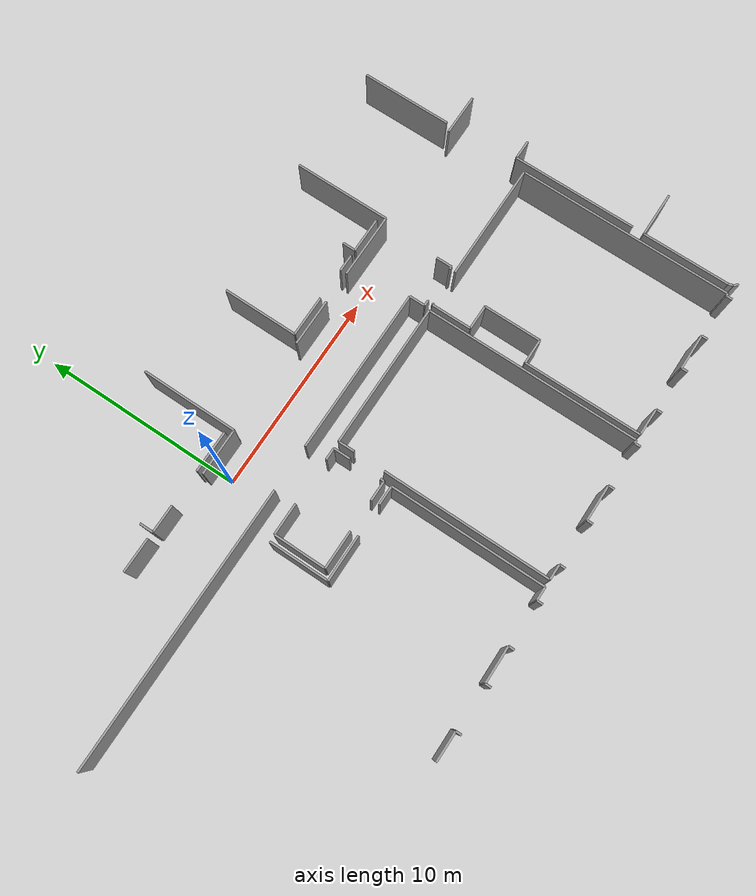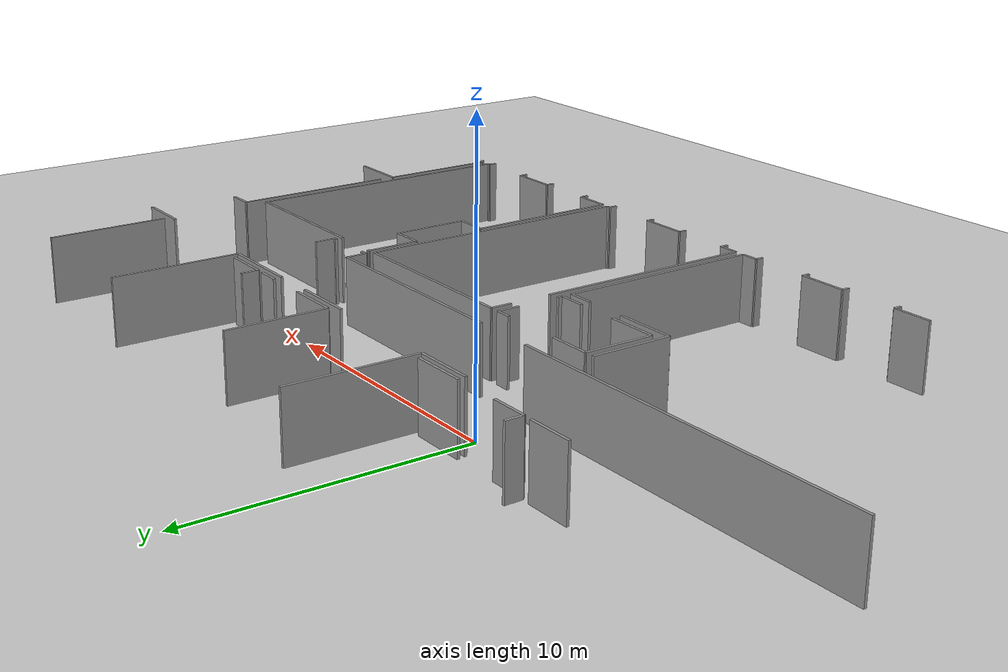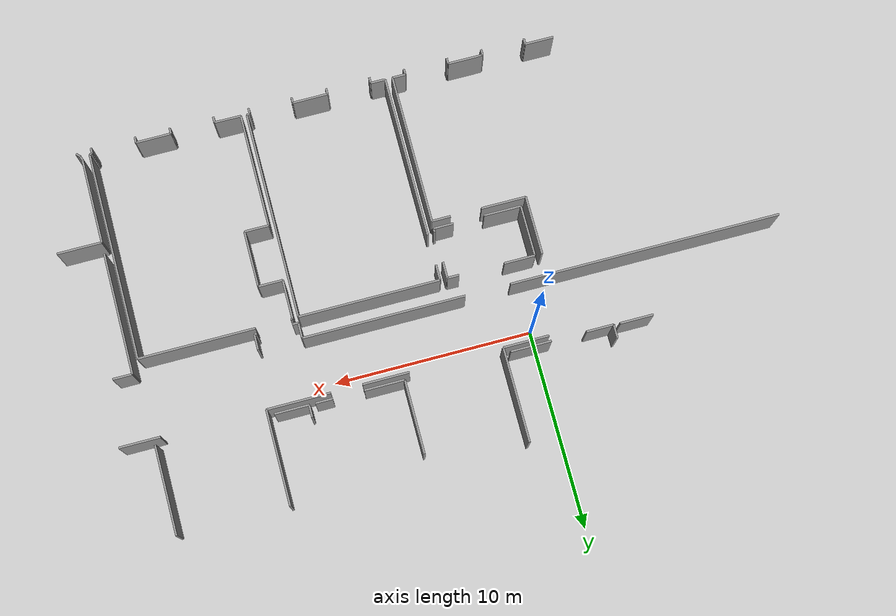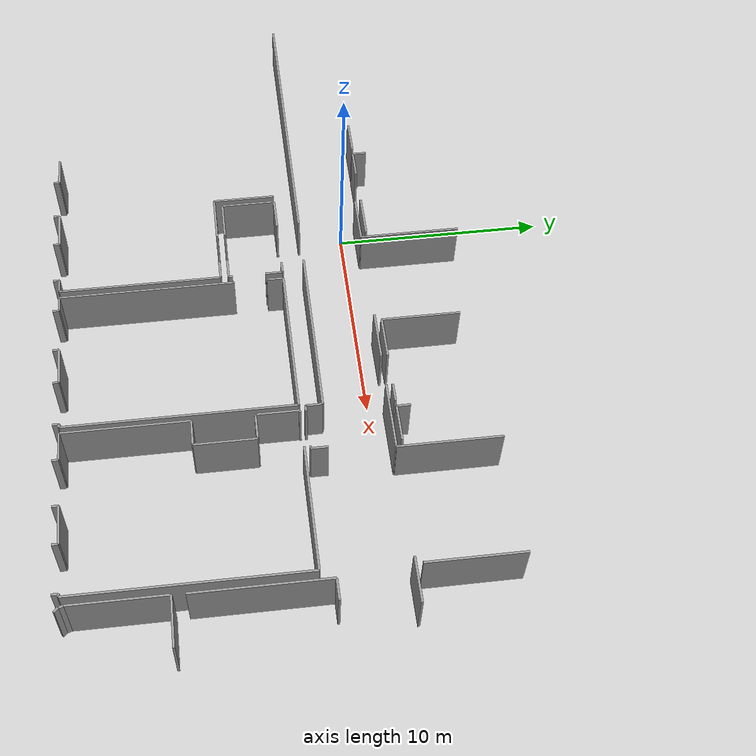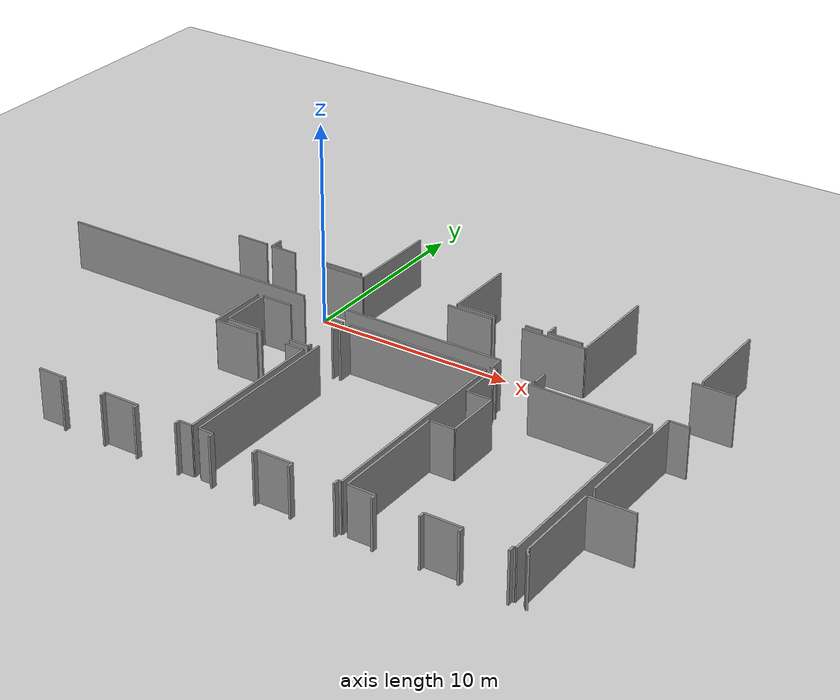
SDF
<sdf version="1.6">
 <world name="default">
  <model name="ground_plane">
   <static>1</static>
   <link name="link">
    <collision name="collision">
     <geometry><plane><normal>0 0 1</normal><size>100 100</size></plane></geometry>
     <surface><friction><ode><mu>100</mu><mu2>50</mu2></ode></friction></surface>
    </collision>
    <visual name="visual">
     <cast_shadows>0</cast_shadows>
     <geometry><plane><normal>0 0 1</normal><size>100 100</size></plane></geometry>
     <material>
      <script><uri>file://media/materials/scripts/gazebo.material</uri><name>Gazebo/Grey</name></script>
     </material>
    </visual>
   </link>
  </model>
  <model name="0510032270_A_40_1_104">
   <static>1</static>
   <link name="Wall_234">
    <collision name="Wall_234_Collision">
     <geometry><box><size>1.68494351754 0.1 2.5</size></box></geometry>
     <pose>0.842471758771 0 1.25 0 0 0</pose>
    </collision>
    <visual name="Wall_234_Visual">
     <pose>0.842471758771 0 1.25 0 0 0</pose>
     <geometry><box><size>1.68494351754 0.1 2.5</size></box></geometry>
     <material>
      <script><uri>file://media/materials/scripts/gazebo.material</uri><name>Gazebo/Grey</name></script>
      <ambient>1 1 1 1</ambient>
     </material>
    </visual>
    <pose>43.7073840172 -14.1587354029 0 0 0 3.14159265359</pose>
   </link>
   <link name="Wall_235">
    <collision name="Wall_235_Collision">
     <geometry><box><size>0.647928129408 0.1 2.5</size></box></geometry>
     <pose>0.323964064704 0 1.25 0 0 0</pose>
    </collision>
    <visual name="Wall_235_Visual">
     <pose>0.323964064704 0 1.25 0 0 0</pose>
     <geometry><box><size>0.647928129408 0.1 2.5</size></box></geometry>
     <material>
      <script><uri>file://media/materials/scripts/gazebo.material</uri><name>Gazebo/Grey</name></script>
      <ambient>1 1 1 1</ambient>
     </material>
    </visual>
    <pose>44.0287431541 -14.1545421045 0 0 0 1.57079632679</pose>
   </link>
   <link name="Wall_241">
    <collision name="Wall_241_Collision">
     <geometry><box><size>2.04696494148 0.1 2.5</size></box></geometry>
     <pose>1.02348247074 0 1.25 0 0 0</pose>
    </collision>
    <visual name="Wall_241_Visual">
     <pose>1.02348247074 0 1.25 0 0 0</pose>
     <geometry><box><size>2.04696494148 0.1 2.5</size></box></geometry>
     <material>
      <script><uri>file://media/materials/scripts/gazebo.material</uri><name>Gazebo/Grey</name></script>
      <ambient>1 1 1 1</ambient>
     </material>
    </visual>
    <pose>49.205814707 -14.1772875713 0 0 0 3.14159265359</pose>
   </link>
   <link name="Wall_242">
    <collision name="Wall_242_Collision">
     <geometry><box><size>1.37298753447 0.1 2.5</size></box></geometry>
     <pose>0.686493767234 0 1.25 0 0 0</pose>
    </collision>
    <visual name="Wall_242_Visual">
     <pose>0.686493767234 0 1.25 0 0 0</pose>
     <geometry><box><size>1.37298753447 0.1 2.5</size></box></geometry>
     <material>
      <script><uri>file://media/materials/scripts/gazebo.material</uri><name>Gazebo/Grey</name></script>
      <ambient>1 1 1 1</ambient>
     </material>
    </visual>
    <pose>45.3995705046 -14.1772875713 0 0 0 3.14159265359</pose>
   </link>
   <link name="Wall_243">
    <collision name="Wall_243_Collision">
     <geometry><box><size>0.0228478150905 0.1 2.5</size></box></geometry>
     <pose>0.0114239075453 0 1.25 0 0 0</pose>
    </collision>
    <visual name="Wall_243_Visual">
     <pose>0.0114239075453 0 1.25 0 0 0</pose>
     <geometry><box><size>0.0228478150905 0.1 2.5</size></box></geometry>
     <material>
      <script><uri>file://media/materials/scripts/gazebo.material</uri><name>Gazebo/Grey</name></script>
      <ambient>1 1 1 1</ambient>
     </material>
    </visual>
    <pose>44.0265829701 -14.1772875713 0 0 0 1.476108264</pose>
   </link>
   <link name="Wall_263">
    <collision name="Wall_263_Collision">
     <geometry><box><size>2.95780017027 0.1 2.5</size></box></geometry>
     <pose>1.47890008514 0 1.25 0 0 0</pose>
    </collision>
    <visual name="Wall_263_Visual">
     <pose>1.47890008514 0 1.25 0 0 0</pose>
     <geometry><box><size>2.95780017027 0.1 2.5</size></box></geometry>
     <material>
      <script><uri>file://media/materials/scripts/gazebo.material</uri><name>Gazebo/Grey</name></script>
      <ambient>1 1 1 1</ambient>
     </material>
    </visual>
    <pose>46.4297241318 -18.4702085213 0 0 0 -1.57079632679</pose>
   </link>
   <link name="Wall_264">
    <collision name="Wall_264_Collision">
     <geometry><box><size>2.2638728287 0.1 2.5</size></box></geometry>
     <pose>1.13193641435 0 1.25 0 0 0</pose>
    </collision>
    <visual name="Wall_264_Visual">
     <pose>1.13193641435 0 1.25 0 0 0</pose>
     <geometry><box><size>2.2638728287 0.1 2.5</size></box></geometry>
     <material>
      <script><uri>file://media/materials/scripts/gazebo.material</uri><name>Gazebo/Grey</name></script>
      <ambient>1 1 1 1</ambient>
     </material>
    </visual>
    <pose>46.4297241318 -21.4280086916 0 0 0 0.0</pose>
   </link>
   <link name="Wall_265">
    <collision name="Wall_265_Collision">
     <geometry><box><size>0.953530630138 0.1 2.5</size></box></geometry>
     <pose>0.476765315069 0 1.25 0 0 0</pose>
    </collision>
    <visual name="Wall_265_Visual">
     <pose>0.476765315069 0 1.25 0 0 0</pose>
     <geometry><box><size>0.953530630138 0.1 2.5</size></box></geometry>
     <material>
      <script><uri>file://media/materials/scripts/gazebo.material</uri><name>Gazebo/Grey</name></script>
      <ambient>1 1 1 1</ambient>
     </material>
    </visual>
    <pose>50.2667191888 -21.4280086916 0 0 0 0.0</pose>
   </link>
   <link name="Wall_266">
    <collision name="Wall_266_Collision">
     <geometry><box><size>7.6284991804 0.1 2.5</size></box></geometry>
     <pose>3.8142495902 0 1.25 0 0 0</pose>
    </collision>
    <visual name="Wall_266_Visual">
     <pose>3.8142495902 0 1.25 0 0 0</pose>
     <geometry><box><size>7.6284991804 0.1 2.5</size></box></geometry>
     <material>
      <script><uri>file://media/materials/scripts/gazebo.material</uri><name>Gazebo/Grey</name></script>
      <ambient>1 1 1 1</ambient>
     </material>
    </visual>
    <pose>51.2202498189 -21.4280086916 0 0 0 -1.57079632679</pose>
   </link>
   <link name="Wall_267">
    <collision name="Wall_267_Collision">
     <geometry><box><size>0.664065974561 0.1 2.5</size></box></geometry>
     <pose>0.33203298728 0 1.25 0 0 0</pose>
    </collision>
    <visual name="Wall_267_Visual">
     <pose>0.33203298728 0 1.25 0 0 0</pose>
     <geometry><box><size>0.664065974561 0.1 2.5</size></box></geometry>
     <material>
      <script><uri>file://media/materials/scripts/gazebo.material</uri><name>Gazebo/Grey</name></script>
      <ambient>1 1 1 1</ambient>
     </material>
    </visual>
    <pose>51.2202498189 -29.056507872 0 0 0 3.14159265359</pose>
   </link>
   <link name="Wall_268">
    <collision name="Wall_268_Collision">
     <geometry><box><size>0.2906082824 0.1 2.5</size></box></geometry>
     <pose>0.1453041412 0 1.25 0 0 0</pose>
    </collision>
    <visual name="Wall_268_Visual">
     <pose>0.1453041412 0 1.25 0 0 0</pose>
     <geometry><box><size>0.2906082824 0.1 2.5</size></box></geometry>
     <material>
      <script><uri>file://media/materials/scripts/gazebo.material</uri><name>Gazebo/Grey</name></script>
      <ambient>1 1 1 1</ambient>
     </material>
    </visual>
    <pose>50.5561838444 -29.056507872 0 0 0 -1.57079632679</pose>
   </link>
   <link name="Wall_269">
    <collision name="Wall_269_Collision">
     <geometry><box><size>0.288193959109 0.1 2.5</size></box></geometry>
     <pose>0.144096979554 0 1.25 0 0 0</pose>
    </collision>
    <visual name="Wall_269_Visual">
     <pose>0.144096979554 0 1.25 0 0 0</pose>
     <geometry><box><size>0.288193959109 0.1 2.5</size></box></geometry>
     <material>
      <script><uri>file://media/materials/scripts/gazebo.material</uri><name>Gazebo/Grey</name></script>
      <ambient>1 1 1 1</ambient>
     </material>
    </visual>
    <pose>48.3364041831 -29.3471161544 0 0 0 1.57079632679</pose>
   </link>
   <link name="Wall_270">
    <collision name="Wall_270_Collision">
     <geometry><box><size>1.78291421528 0.1 2.5</size></box></geometry>
     <pose>0.891457107641 0 1.25 0 0 0</pose>
    </collision>
    <visual name="Wall_270_Visual">
     <pose>0.891457107641 0 1.25 0 0 0</pose>
     <geometry><box><size>1.78291421528 0.1 2.5</size></box></geometry>
     <material>
      <script><uri>file://media/materials/scripts/gazebo.material</uri><name>Gazebo/Grey</name></script>
      <ambient>1 1 1 1</ambient>
     </material>
    </visual>
    <pose>48.3364041831 -29.0589221953 0 0 0 3.14159265359</pose>
   </link>
   <link name="Wall_271">
    <collision name="Wall_271_Collision">
     <geometry><box><size>0.294547441453 0.1 2.5</size></box></geometry>
     <pose>0.147273720726 0 1.25 0 0 0</pose>
    </collision>
    <visual name="Wall_271_Visual">
     <pose>0.147273720726 0 1.25 0 0 0</pose>
     <geometry><box><size>0.294547441453 0.1 2.5</size></box></geometry>
     <material>
      <script><uri>file://media/materials/scripts/gazebo.material</uri><name>Gazebo/Grey</name></script>
      <ambient>1 1 1 1</ambient>
     </material>
    </visual>
    <pose>46.5534899679 -29.0589221953 0 0 0 -1.57079632679</pose>
   </link>
   <link name="Wall_272">
    <collision name="Wall_272_Collision">
     <geometry><box><size>0.285398426878 0.1 2.5</size></box></geometry>
     <pose>0.142699213439 0 1.25 0 0 0</pose>
    </collision>
    <visual name="Wall_272_Visual">
     <pose>0.142699213439 0 1.25 0 0 0</pose>
     <geometry><box><size>0.285398426878 0.1 2.5</size></box></geometry>
     <material>
      <script><uri>file://media/materials/scripts/gazebo.material</uri><name>Gazebo/Grey</name></script>
      <ambient>1 1 1 1</ambient>
     </material>
    </visual>
    <pose>44.3319313316 -29.3534696367 0 0 0 1.57079632679</pose>
   </link>
   <link name="Wall_273">
    <collision name="Wall_273_Collision">
     <geometry><box><size>1.44555323879 0.1 2.5</size></box></geometry>
     <pose>0.722776619393 0 1.25 0 0 0</pose>
    </collision>
    <visual name="Wall_273_Visual">
     <pose>0.722776619393 0 1.25 0 0 0</pose>
     <geometry><box><size>1.44555323879 0.1 2.5</size></box></geometry>
     <material>
      <script><uri>file://media/materials/scripts/gazebo.material</uri><name>Gazebo/Grey</name></script>
      <ambient>1 1 1 1</ambient>
     </material>
    </visual>
    <pose>44.3319313316 -29.0680712098 0 0 0 3.13807649368</pose>
   </link>
   <link name="Wall_274">
    <collision name="Wall_274_Collision">
     <geometry><box><size>2.56922119013 0.1 2.5</size></box></geometry>
     <pose>1.28461059507 0 1.25 0 0 0</pose>
    </collision>
    <visual name="Wall_274_Visual">
     <pose>1.28461059507 0 1.25 0 0 0</pose>
     <geometry><box><size>2.56922119013 0.1 2.5</size></box></geometry>
     <material>
      <script><uri>file://media/materials/scripts/gazebo.material</uri><name>Gazebo/Grey</name></script>
      <ambient>1 1 1 1</ambient>
     </material>
    </visual>
    <pose>46.7879334663 -21.0394297114 0 0 0 1.57079632679</pose>
   </link>
   <link name="Wall_275">
    <collision name="Wall_275_Collision">
     <geometry><box><size>1.5546971295 0.1 2.5</size></box></geometry>
     <pose>0.777348564748 0 1.25 0 0 0</pose>
    </collision>
    <visual name="Wall_275_Visual">
     <pose>0.777348564748 0 1.25 0 0 0</pose>
     <geometry><box><size>1.5546971295 0.1 2.5</size></box></geometry>
     <material>
      <script><uri>file://media/materials/scripts/gazebo.material</uri><name>Gazebo/Grey</name></script>
      <ambient>1 1 1 1</ambient>
     </material>
    </visual>
    <pose>46.7879334663 -18.4702085213 0 0 0 0.0</pose>
   </link>
   <link name="Wall_276">
    <collision name="Wall_276_Collision">
     <geometry><box><size>0.593288181252 0.1 2.5</size></box></geometry>
     <pose>0.296644090626 0 1.25 0 0 0</pose>
    </collision>
    <visual name="Wall_276_Visual">
     <pose>0.296644090626 0 1.25 0 0 0</pose>
     <geometry><box><size>0.593288181252 0.1 2.5</size></box></geometry>
     <material>
      <script><uri>file://media/materials/scripts/gazebo.material</uri><name>Gazebo/Grey</name></script>
      <ambient>1 1 1 1</ambient>
     </material>
    </visual>
    <pose>50.6307737271 -18.4702085213 0 0 0 0.0</pose>
   </link>
   <link name="Wall_277">
    <collision name="Wall_277_Collision">
     <geometry><box><size>0.826969261852 0.1 2.5</size></box></geometry>
     <pose>0.413484630926 0 1.25 0 0 0</pose>
    </collision>
    <visual name="Wall_277_Visual">
     <pose>0.413484630926 0 1.25 0 0 0</pose>
     <geometry><box><size>0.826969261852 0.1 2.5</size></box></geometry>
     <material>
      <script><uri>file://media/materials/scripts/gazebo.material</uri><name>Gazebo/Grey</name></script>
      <ambient>1 1 1 1</ambient>
     </material>
    </visual>
    <pose>51.2240619083 -18.4702085213 0 0 0 -1.57079632679</pose>
   </link>
   <link name="Wall_278">
    <collision name="Wall_278_Collision">
     <geometry><box><size>0.189587913135 0.1 2.5</size></box></geometry>
     <pose>0.0947939565676 0 1.25 0 0 0</pose>
    </collision>
    <visual name="Wall_278_Visual">
     <pose>0.0947939565676 0 1.25 0 0 0</pose>
     <geometry><box><size>0.189587913135 0.1 2.5</size></box></geometry>
     <material>
      <script><uri>file://media/materials/scripts/gazebo.material</uri><name>Gazebo/Grey</name></script>
      <ambient>1 1 1 1</ambient>
     </material>
    </visual>
    <pose>51.2240619083 -20.8546704449 0 0 0 -1.57079632679</pose>
   </link>
   <link name="Wall_279">
    <collision name="Wall_279_Collision">
     <geometry><box><size>1.00397727995 0.1 2.5</size></box></geometry>
     <pose>0.501988639974 0 1.25 0 0 0</pose>
    </collision>
    <visual name="Wall_279_Visual">
     <pose>0.501988639974 0 1.25 0 0 0</pose>
     <geometry><box><size>1.00397727995 0.1 2.5</size></box></geometry>
     <material>
      <script><uri>file://media/materials/scripts/gazebo.material</uri><name>Gazebo/Grey</name></script>
      <ambient>1 1 1 1</ambient>
     </material>
    </visual>
    <pose>51.2240619083 -21.044258358 0 0 0 3.14159265359</pose>
   </link>
   <link name="Wall_280">
    <collision name="Wall_280_Collision">
     <geometry><box><size>1.87809558811 0.1 2.5</size></box></geometry>
     <pose>0.939047794053 0 1.25 0 0 0</pose>
    </collision>
    <visual name="Wall_280_Visual">
     <pose>0.939047794053 0 1.25 0 0 0</pose>
     <geometry><box><size>1.87809558811 0.1 2.5</size></box></geometry>
     <material>
      <script><uri>file://media/materials/scripts/gazebo.material</uri><name>Gazebo/Grey</name></script>
      <ambient>1 1 1 1</ambient>
     </material>
    </visual>
    <pose>48.6660228471 -21.044258358 0 0 0 3.13902161731</pose>
   </link>
   <link name="Wall_281">
    <collision name="Wall_281_Collision">
     <geometry><box><size>8.25978118607 0.1 2.5</size></box></geometry>
     <pose>4.12989059303 0 1.25 0 0 0</pose>
    </collision>
    <visual name="Wall_281_Visual">
     <pose>4.12989059303 0 1.25 0 0 0</pose>
     <geometry><box><size>8.25978118607 0.1 2.5</size></box></geometry>
     <material>
      <script><uri>file://media/materials/scripts/gazebo.material</uri><name>Gazebo/Grey</name></script>
      <ambient>1 1 1 1</ambient>
     </material>
    </visual>
    <pose>51.5888788645 -29.062988424 0 0 0 1.57079632679</pose>
   </link>
   <link name="Wall_282">
    <collision name="Wall_282_Collision">
     <geometry><box><size>0.785671626619 0.1 2.5</size></box></geometry>
     <pose>0.392835813309 0 1.25 0 0 0</pose>
    </collision>
    <visual name="Wall_282_Visual">
     <pose>0.392835813309 0 1.25 0 0 0</pose>
     <geometry><box><size>0.785671626619 0.1 2.5</size></box></geometry>
     <material>
      <script><uri>file://media/materials/scripts/gazebo.material</uri><name>Gazebo/Grey</name></script>
      <ambient>1 1 1 1</ambient>
     </material>
    </visual>
    <pose>51.5888788645 -19.2549906604 0 0 0 1.57079632679</pose>
   </link>
   <link name="Wall_283">
    <collision name="Wall_283_Collision">
     <geometry><box><size>7.11958524467 0.1 2.5</size></box></geometry>
     <pose>3.55979262234 0 1.25 0 0 0</pose>
    </collision>
    <visual name="Wall_283_Visual">
     <pose>3.55979262234 0 1.25 0 0 0</pose>
     <geometry><box><size>7.11958524467 0.1 2.5</size></box></geometry>
     <material>
      <script><uri>file://media/materials/scripts/gazebo.material</uri><name>Gazebo/Grey</name></script>
      <ambient>1 1 1 1</ambient>
     </material>
    </visual>
    <pose>51.5888788645 -18.4693190338 0 0 0 0.0</pose>
   </link>
   <link name="Wall_284">
    <collision name="Wall_284_Collision">
     <geometry><box><size>10.5771503361 0.1 2.5</size></box></geometry>
     <pose>5.28857516805 0 1.25 0 0 0</pose>
    </collision>
    <visual name="Wall_284_Visual">
     <pose>5.28857516805 0 1.25 0 0 0</pose>
     <geometry><box><size>10.5771503361 0.1 2.5</size></box></geometry>
     <material>
      <script><uri>file://media/materials/scripts/gazebo.material</uri><name>Gazebo/Grey</name></script>
      <ambient>1 1 1 1</ambient>
     </material>
    </visual>
    <pose>58.7084641092 -18.4693190338 0 0 0 -1.57079632679</pose>
   </link>
   <link name="Wall_285">
    <collision name="Wall_285_Collision">
     <geometry><box><size>0.157566362123 0.1 2.5</size></box></geometry>
     <pose>0.0787831810615 0 1.25 0 0 0</pose>
    </collision>
    <visual name="Wall_285_Visual">
     <pose>0.0787831810615 0 1.25 0 0 0</pose>
     <geometry><box><size>0.157566362123 0.1 2.5</size></box></geometry>
     <material>
      <script><uri>file://media/materials/scripts/gazebo.material</uri><name>Gazebo/Grey</name></script>
      <ambient>1 1 1 1</ambient>
     </material>
    </visual>
    <pose>58.7084641092 -29.0464693699 0 0 0 3.14159265359</pose>
   </link>
   <link name="Wall_286">
    <collision name="Wall_286_Collision">
     <geometry><box><size>0.30318817744 0.1 2.5</size></box></geometry>
     <pose>0.15159408872 0 1.25 0 0 0</pose>
    </collision>
    <visual name="Wall_286_Visual">
     <pose>0.15159408872 0 1.25 0 0 0</pose>
     <geometry><box><size>0.30318817744 0.1 2.5</size></box></geometry>
     <material>
      <script><uri>file://media/materials/scripts/gazebo.material</uri><name>Gazebo/Grey</name></script>
      <ambient>1 1 1 1</ambient>
     </material>
    </visual>
    <pose>58.5508977471 -29.0464693699 0 0 0 -1.57079632679</pose>
   </link>
   <link name="Wall_287">
    <collision name="Wall_287_Collision">
     <geometry><box><size>0.286669123347 0.1 2.5</size></box></geometry>
     <pose>0.143334561673 0 1.25 0 0 0</pose>
    </collision>
    <visual name="Wall_287_Visual">
     <pose>0.143334561673 0 1.25 0 0 0</pose>
     <geometry><box><size>0.286669123347 0.1 2.5</size></box></geometry>
     <material>
      <script><uri>file://media/materials/scripts/gazebo.material</uri><name>Gazebo/Grey</name></script>
      <ambient>1 1 1 1</ambient>
     </material>
    </visual>
    <pose>56.3410295183 -29.3496575473 0 0 0 1.57079632679</pose>
   </link>
   <link name="Wall_288">
    <collision name="Wall_288_Collision">
     <geometry><box><size>1.77948333482 0.1 2.5</size></box></geometry>
     <pose>0.889741667408 0 1.25 0 0 0</pose>
    </collision>
    <visual name="Wall_288_Visual">
     <pose>0.889741667408 0 1.25 0 0 0</pose>
     <geometry><box><size>1.77948333482 0.1 2.5</size></box></geometry>
     <material>
      <script><uri>file://media/materials/scripts/gazebo.material</uri><name>Gazebo/Grey</name></script>
      <ambient>1 1 1 1</ambient>
     </material>
    </visual>
    <pose>56.3410295183 -29.062988424 0 0 0 3.14159265359</pose>
   </link>
   <link name="Wall_289">
    <collision name="Wall_289_Collision">
     <geometry><box><size>0.297724182624 0.1 2.5</size></box></geometry>
     <pose>0.148862091312 0 1.25 0 0 0</pose>
    </collision>
    <visual name="Wall_289_Visual">
     <pose>0.148862091312 0 1.25 0 0 0</pose>
     <geometry><box><size>0.297724182624 0.1 2.5</size></box></geometry>
     <material>
      <script><uri>file://media/materials/scripts/gazebo.material</uri><name>Gazebo/Grey</name></script>
      <ambient>1 1 1 1</ambient>
     </material>
    </visual>
    <pose>54.5615461835 -29.062988424 0 0 0 -1.57079632679</pose>
   </link>
   <link name="Wall_290">
    <collision name="Wall_290_Collision">
     <geometry><box><size>0.292895536043 0.1 2.5</size></box></geometry>
     <pose>0.146447768022 0 1.25 0 0 0</pose>
    </collision>
    <visual name="Wall_290_Visual">
     <pose>0.146447768022 0 1.25 0 0 0</pose>
     <geometry><box><size>0.292895536043 0.1 2.5</size></box></geometry>
     <material>
      <script><uri>file://media/materials/scripts/gazebo.material</uri><name>Gazebo/Grey</name></script>
      <ambient>1 1 1 1</ambient>
     </material>
    </visual>
    <pose>52.3349047613 -29.3607126066 0 0 0 1.57079632679</pose>
   </link>
   <link name="Wall_291">
    <collision name="Wall_291_Collision">
     <geometry><box><size>0.746041523318 0.1 2.5</size></box></geometry>
     <pose>0.373020761659 0 1.25 0 0 0</pose>
    </collision>
    <visual name="Wall_291_Visual">
     <pose>0.373020761659 0 1.25 0 0 0</pose>
     <geometry><box><size>0.746041523318 0.1 2.5</size></box></geometry>
     <material>
      <script><uri>file://media/materials/scripts/gazebo.material</uri><name>Gazebo/Grey</name></script>
      <ambient>1 1 1 1</ambient>
     </material>
    </visual>
    <pose>52.3349047613 -29.0678170705 0 0 0 3.13512025206</pose>
   </link>
   <link name="Wall_292">
    <collision name="Wall_292_Collision">
     <geometry><box><size>5.79806091719 0.1 2.5</size></box></geometry>
     <pose>2.89903045859 0 1.25 0 0 0</pose>
    </collision>
    <visual name="Wall_292_Visual">
     <pose>2.89903045859 0 1.25 0 0 0</pose>
     <geometry><box><size>5.79806091719 0.1 2.5</size></box></geometry>
     <material>
      <script><uri>file://media/materials/scripts/gazebo.material</uri><name>Gazebo/Grey</name></script>
      <ambient>1 1 1 1</ambient>
     </material>
    </visual>
    <pose>59.0079672669 -29.0612094489 0 0 0 1.57079632679</pose>
   </link>
   <link name="Wall_293">
    <collision name="Wall_293_Collision">
     <geometry><box><size>1.2231724208 0.1 2.5</size></box></geometry>
     <pose>0.611586210402 0 1.25 0 0 0</pose>
    </collision>
    <visual name="Wall_293_Visual">
     <pose>0.611586210402 0 1.25 0 0 0</pose>
     <geometry><box><size>1.2231724208 0.1 2.5</size></box></geometry>
     <material>
      <script><uri>file://media/materials/scripts/gazebo.material</uri><name>Gazebo/Grey</name></script>
      <ambient>1 1 1 1</ambient>
     </material>
    </visual>
    <pose>59.0079672669 -23.2631485317 0 0 0 0.0</pose>
   </link>
   <link name="Wall_294">
    <collision name="Wall_294_Collision">
     <geometry><box><size>2.84026074692 0.1 2.5</size></box></geometry>
     <pose>1.42013037346 0 1.25 0 0 0</pose>
    </collision>
    <visual name="Wall_294_Visual">
     <pose>1.42013037346 0 1.25 0 0 0</pose>
     <geometry><box><size>2.84026074692 0.1 2.5</size></box></geometry>
     <material>
      <script><uri>file://media/materials/scripts/gazebo.material</uri><name>Gazebo/Grey</name></script>
      <ambient>1 1 1 1</ambient>
     </material>
    </visual>
    <pose>60.2311396877 -23.2631485317 0 0 0 1.57079632679</pose>
   </link>
   <link name="Wall_295">
    <collision name="Wall_295_Collision">
     <geometry><box><size>1.22673037092 0.1 2.5</size></box></geometry>
     <pose>0.613365185458 0 1.25 0 0 0</pose>
    </collision>
    <visual name="Wall_295_Visual">
     <pose>0.613365185458 0 1.25 0 0 0</pose>
     <geometry><box><size>1.22673037092 0.1 2.5</size></box></geometry>
     <material>
      <script><uri>file://media/materials/scripts/gazebo.material</uri><name>Gazebo/Grey</name></script>
      <ambient>1 1 1 1</ambient>
     </material>
    </visual>
    <pose>60.2311396877 -20.4228877848 0 0 0 3.14159265359</pose>
   </link>
   <link name="Wall_296">
    <collision name="Wall_296_Collision">
     <geometry><box><size>1.97478938206 0.1 2.5</size></box></geometry>
     <pose>0.98739469103 0 1.25 0 0 0</pose>
    </collision>
    <visual name="Wall_296_Visual">
     <pose>0.98739469103 0 1.25 0 0 0</pose>
     <geometry><box><size>1.97478938206 0.1 2.5</size></box></geometry>
     <material>
      <script><uri>file://media/materials/scripts/gazebo.material</uri><name>Gazebo/Grey</name></script>
      <ambient>1 1 1 1</ambient>
     </material>
    </visual>
    <pose>59.0044093167 -20.4228877848 0 0 0 1.57079632679</pose>
   </link>
   <link name="Wall_297">
    <collision name="Wall_297_Collision">
     <geometry><box><size>0.0960646530363 0.1 2.5</size></box></geometry>
     <pose>0.0480323265182 0 1.25 0 0 0</pose>
    </collision>
    <visual name="Wall_297_Visual">
     <pose>0.0480323265182 0 1.25 0 0 0</pose>
     <geometry><box><size>0.0960646530363 0.1 2.5</size></box></geometry>
     <material>
      <script><uri>file://media/materials/scripts/gazebo.material</uri><name>Gazebo/Grey</name></script>
      <ambient>1 1 1 1</ambient>
     </material>
    </visual>
    <pose>59.0044093167 -18.4480984027 0 0 0 0.0</pose>
   </link>
   <link name="Wall_298">
    <collision name="Wall_298_Collision">
     <geometry><box><size>5.85511518863 0.1 2.5</size></box></geometry>
     <pose>2.92755759432 0 1.25 0 0 0</pose>
    </collision>
    <visual name="Wall_298_Visual">
     <pose>2.92755759432 0 1.25 0 0 0</pose>
     <geometry><box><size>5.85511518863 0.1 2.5</size></box></geometry>
     <material>
      <script><uri>file://media/materials/scripts/gazebo.material</uri><name>Gazebo/Grey</name></script>
      <ambient>1 1 1 1</ambient>
     </material>
    </visual>
    <pose>60.8499688679 -18.4480984027 0 0 0 0.0</pose>
   </link>
   <link name="Wall_299">
    <collision name="Wall_299_Collision">
     <geometry><box><size>10.6024371958 0.1 2.5</size></box></geometry>
     <pose>5.30121859791 0 1.25 0 0 0</pose>
    </collision>
    <visual name="Wall_299_Visual">
     <pose>5.30121859791 0 1.25 0 0 0</pose>
     <geometry><box><size>10.6024371958 0.1 2.5</size></box></geometry>
     <material>
      <script><uri>file://media/materials/scripts/gazebo.material</uri><name>Gazebo/Grey</name></script>
      <ambient>1 1 1 1</ambient>
     </material>
    </visual>
    <pose>66.7050840566 -18.4480984027 0 0 0 -1.57079632679</pose>
   </link>
   <link name="Wall_300">
    <collision name="Wall_300_Collision">
     <geometry><box><size>0.12884862193 0.1 2.5</size></box></geometry>
     <pose>0.0644243109648 0 1.25 0 0 0</pose>
    </collision>
    <visual name="Wall_300_Visual">
     <pose>0.0644243109648 0 1.25 0 0 0</pose>
     <geometry><box><size>0.12884862193 0.1 2.5</size></box></geometry>
     <material>
      <script><uri>file://media/materials/scripts/gazebo.material</uri><name>Gazebo/Grey</name></script>
      <ambient>1 1 1 1</ambient>
     </material>
    </visual>
    <pose>66.7050840566 -29.0505355986 0 0 0 3.14159265359</pose>
   </link>
   <link name="Wall_301">
    <collision name="Wall_301_Collision">
     <geometry><box><size>0.303315247087 0.1 2.5</size></box></geometry>
     <pose>0.151657623543 0 1.25 0 0 0</pose>
    </collision>
    <visual name="Wall_301_Visual">
     <pose>0.151657623543 0 1.25 0 0 0</pose>
     <geometry><box><size>0.303315247087 0.1 2.5</size></box></geometry>
     <material>
      <script><uri>file://media/materials/scripts/gazebo.material</uri><name>Gazebo/Grey</name></script>
      <ambient>1 1 1 1</ambient>
     </material>
    </visual>
    <pose>66.5762354346 -29.0505355986 0 0 0 -1.57079632679</pose>
   </link>
   <link name="Wall_302">
    <collision name="Wall_302_Collision">
     <geometry><box><size>0.296580555803 0.1 2.5</size></box></geometry>
     <pose>0.148290277901 0 1.25 0 0 0</pose>
    </collision>
    <visual name="Wall_302_Visual">
     <pose>0.148290277901 0 1.25 0 0 0</pose>
     <geometry><box><size>0.296580555803 0.1 2.5</size></box></geometry>
     <material>
      <script><uri>file://media/materials/scripts/gazebo.material</uri><name>Gazebo/Grey</name></script>
      <ambient>1 1 1 1</ambient>
     </material>
    </visual>
    <pose>64.3503564304 -29.3538508456 0 0 0 1.57079632679</pose>
   </link>
   <link name="Wall_303">
    <collision name="Wall_303_Collision">
     <geometry><box><size>1.77719608117 0.1 2.5</size></box></geometry>
     <pose>0.888598040586 0 1.25 0 0 0</pose>
    </collision>
    <visual name="Wall_303_Visual">
     <pose>0.888598040586 0 1.25 0 0 0</pose>
     <geometry><box><size>1.77719608117 0.1 2.5</size></box></geometry>
     <material>
      <script><uri>file://media/materials/scripts/gazebo.material</uri><name>Gazebo/Grey</name></script>
      <ambient>1 1 1 1</ambient>
     </material>
    </visual>
    <pose>64.3503564304 -29.0572702898 0 0 0 3.14159265359</pose>
   </link>
   <link name="Wall_304">
    <collision name="Wall_304_Collision">
     <geometry><box><size>0.303442316734 0.1 2.5</size></box></geometry>
     <pose>0.151721158367 0 1.25 0 0 0</pose>
    </collision>
    <visual name="Wall_304_Visual">
     <pose>0.151721158367 0 1.25 0 0 0</pose>
     <geometry><box><size>0.303442316734 0.1 2.5</size></box></geometry>
     <material>
      <script><uri>file://media/materials/scripts/gazebo.material</uri><name>Gazebo/Grey</name></script>
      <ambient>1 1 1 1</ambient>
     </material>
    </visual>
    <pose>62.5731603492 -29.0572702898 0 0 0 -1.57079632679</pose>
   </link>
   <link name="Wall_305">
    <collision name="Wall_305_Collision">
     <geometry><box><size>0.292895536043 0.1 2.5</size></box></geometry>
     <pose>0.146447768022 0 1.25 0 0 0</pose>
    </collision>
    <visual name="Wall_305_Visual">
     <pose>0.146447768022 0 1.25 0 0 0</pose>
     <geometry><box><size>0.292895536043 0.1 2.5</size></box></geometry>
     <material>
      <script><uri>file://media/materials/scripts/gazebo.material</uri><name>Gazebo/Grey</name></script>
      <ambient>1 1 1 1</ambient>
     </material>
    </visual>
    <pose>60.3474084146 -29.3607126066 0 0 0 1.57079632679</pose>
   </link>
   <link name="Wall_306">
    <collision name="Wall_306_Collision">
     <geometry><box><size>1.33945744568 0.1 2.5</size></box></geometry>
     <pose>0.669728722842 0 1.25 0 0 0</pose>
    </collision>
    <visual name="Wall_306_Visual">
     <pose>0.669728722842 0 1.25 0 0 0</pose>
     <geometry><box><size>1.33945744568 0.1 2.5</size></box></geometry>
     <material>
      <script><uri>file://media/materials/scripts/gazebo.material</uri><name>Gazebo/Grey</name></script>
      <ambient>1 1 1 1</ambient>
     </material>
    </visual>
    <pose>60.3474084146 -29.0678170705 0 0 0 3.13665957531</pose>
   </link>
   <link name="Wall_307">
    <collision name="Wall_307_Collision">
     <geometry><box><size>4.31337916312 0.1 2.5</size></box></geometry>
     <pose>2.15668958156 0 1.25 0 0 0</pose>
    </collision>
    <visual name="Wall_307_Visual">
     <pose>2.15668958156 0 1.25 0 0 0</pose>
     <geometry><box><size>4.31337916312 0.1 2.5</size></box></geometry>
     <material>
      <script><uri>file://media/materials/scripts/gazebo.material</uri><name>Gazebo/Grey</name></script>
      <ambient>1 1 1 1</ambient>
     </material>
    </visual>
    <pose>67.106497071 -28.8385834276 0 0 0 1.57079632679</pose>
   </link>
   <link name="Wall_308">
    <collision name="Wall_308_Collision">
     <geometry><box><size>2.24964102825 0.1 2.5</size></box></geometry>
     <pose>1.12482051412 0 1.25 0 0 0</pose>
    </collision>
    <visual name="Wall_308_Visual">
     <pose>1.12482051412 0 1.25 0 0 0</pose>
     <geometry><box><size>2.24964102825 0.1 2.5</size></box></geometry>
     <material>
      <script><uri>file://media/materials/scripts/gazebo.material</uri><name>Gazebo/Grey</name></script>
      <ambient>1 1 1 1</ambient>
     </material>
    </visual>
    <pose>67.106497071 -24.5252042645 0 0 0 0.0</pose>
   </link>
   <link name="Wall_311">
    <collision name="Wall_311_Collision">
     <geometry><box><size>6.15233109267 0.1 2.5</size></box></geometry>
     <pose>3.07616554634 0 1.25 0 0 0</pose>
    </collision>
    <visual name="Wall_311_Visual">
     <pose>3.07616554634 0 1.25 0 0 0</pose>
     <geometry><box><size>6.15233109267 0.1 2.5</size></box></geometry>
     <material>
      <script><uri>file://media/materials/scripts/gazebo.material</uri><name>Gazebo/Grey</name></script>
      <ambient>1 1 1 1</ambient>
     </material>
    </visual>
    <pose>67.1197123143 -23.9314078046 0 0 0 1.57079632679</pose>
   </link>
   <link name="Wall_312">
    <collision name="Wall_312_Collision">
     <geometry><box><size>0.974370052226 0.1 2.5</size></box></geometry>
     <pose>0.487185026113 0 1.25 0 0 0</pose>
    </collision>
    <visual name="Wall_312_Visual">
     <pose>0.487185026113 0 1.25 0 0 0</pose>
     <geometry><box><size>0.974370052226 0.1 2.5</size></box></geometry>
     <material>
      <script><uri>file://media/materials/scripts/gazebo.material</uri><name>Gazebo/Grey</name></script>
      <ambient>1 1 1 1</ambient>
     </material>
    </visual>
    <pose>67.1197123143 -17.7790767119 0 0 0 0.0</pose>
   </link>
   <link name="Wall_328">
    <collision name="Wall_328_Collision">
     <geometry><box><size>0.257758672331 0.1 2.5</size></box></geometry>
     <pose>0.128879336166 0 1.25 0 0 0</pose>
    </collision>
    <visual name="Wall_328_Visual">
     <pose>0.128879336166 0 1.25 0 0 0</pose>
     <geometry><box><size>0.257758672331 0.1 2.5</size></box></geometry>
     <material>
      <script><uri>file://media/materials/scripts/gazebo.material</uri><name>Gazebo/Grey</name></script>
      <ambient>1 1 1 1</ambient>
     </material>
    </visual>
    <pose>67.348691818 -29.2436814618 0 0 0 2.32167733653</pose>
   </link>
   <link name="Wall_329">
    <collision name="Wall_329_Collision">
     <geometry><box><size>0.22658014602 0.1 2.5</size></box></geometry>
     <pose>0.11329007301 0 1.25 0 0 0</pose>
    </collision>
    <visual name="Wall_329_Visual">
     <pose>0.11329007301 0 1.25 0 0 0</pose>
     <geometry><box><size>0.22658014602 0.1 2.5</size></box></geometry>
     <material>
      <script><uri>file://media/materials/scripts/gazebo.material</uri><name>Gazebo/Grey</name></script>
      <ambient>1 1 1 1</ambient>
     </material>
    </visual>
    <pose>67.1728274267 -29.0552371755 0 0 0 1.86789337087</pose>
   </link>
   <link name="Wall_479">
    <collision name="Wall_479_Collision">
     <geometry><box><size>3.69099203273 0.1 2.5</size></box></geometry>
     <pose>1.84549601637 0 1.25 0 0 0</pose>
    </collision>
    <visual name="Wall_479_Visual">
     <pose>1.84549601637 0 1.25 0 0 0</pose>
     <geometry><box><size>3.69099203273 0.1 2.5</size></box></geometry>
     <material>
      <script><uri>file://media/materials/scripts/gazebo.material</uri><name>Gazebo/Grey</name></script>
      <ambient>1 1 1 1</ambient>
     </material>
    </visual>
    <pose>54.5038565638 -14.1561940099 0 0 0 1.57079632679</pose>
   </link>
   <link name="Wall_485">
    <collision name="Wall_485_Collision">
     <geometry><box><size>0.86648792203 0.1 2.5</size></box></geometry>
     <pose>0.433243961015 0 1.25 0 0 0</pose>
    </collision>
    <visual name="Wall_485_Visual">
     <pose>0.433243961015 0 1.25 0 0 0</pose>
     <geometry><box><size>0.86648792203 0.1 2.5</size></box></geometry>
     <material>
      <script><uri>file://media/materials/scripts/gazebo.material</uri><name>Gazebo/Grey</name></script>
      <ambient>1 1 1 1</ambient>
     </material>
    </visual>
    <pose>58.9479903935 -14.1545421045 0 0 0 3.14159265359</pose>
   </link>
   <link name="Wall_486">
    <collision name="Wall_486_Collision">
     <geometry><box><size>2.00604919533 0.1 2.5</size></box></geometry>
     <pose>1.00302459767 0 1.25 0 0 0</pose>
    </collision>
    <visual name="Wall_486_Visual">
     <pose>1.00302459767 0 1.25 0 0 0</pose>
     <geometry><box><size>2.00604919533 0.1 2.5</size></box></geometry>
     <material>
      <script><uri>file://media/materials/scripts/gazebo.material</uri><name>Gazebo/Grey</name></script>
      <ambient>1 1 1 1</ambient>
     </material>
    </visual>
    <pose>56.509905079 -14.1545421045 0 0 0 -3.14076919143</pose>
   </link>
   <link name="Wall_490">
    <collision name="Wall_490_Collision">
     <geometry><box><size>1.73488188876 0.1 2.5</size></box></geometry>
     <pose>0.867440944382 0 1.25 0 0 0</pose>
    </collision>
    <visual name="Wall_490_Visual">
     <pose>0.867440944382 0 1.25 0 0 0</pose>
     <geometry><box><size>1.73488188876 0.1 2.5</size></box></geometry>
     <material>
      <script><uri>file://media/materials/scripts/gazebo.material</uri><name>Gazebo/Grey</name></script>
      <ambient>1 1 1 1</ambient>
     </material>
    </visual>
    <pose>60.9812318132 -14.153652617 0 0 0 3.14159265359</pose>
   </link>
   <link name="Wall_491">
    <collision name="Wall_491_Collision">
     <geometry><box><size>0.630519587786 0.1 2.5</size></box></geometry>
     <pose>0.315259793893 0 1.25 0 0 0</pose>
    </collision>
    <visual name="Wall_491_Visual">
     <pose>0.315259793893 0 1.25 0 0 0</pose>
     <geometry><box><size>0.630519587786 0.1 2.5</size></box></geometry>
     <material>
      <script><uri>file://media/materials/scripts/gazebo.material</uri><name>Gazebo/Grey</name></script>
      <ambient>1 1 1 1</ambient>
     </material>
    </visual>
    <pose>59.2463499244 -14.153652617 0 0 0 1.57079632679</pose>
   </link>
   <link name="Wall_493">
    <collision name="Wall_493_Collision">
     <geometry><box><size>4.45544302832 0.1 2.5</size></box></geometry>
     <pose>2.22772151416 0 1.25 0 0 0</pose>
    </collision>
    <visual name="Wall_493_Visual">
     <pose>2.22772151416 0 1.25 0 0 0</pose>
     <geometry><box><size>4.45544302832 0.1 2.5</size></box></geometry>
     <material>
      <script><uri>file://media/materials/scripts/gazebo.material</uri><name>Gazebo/Grey</name></script>
      <ambient>1 1 1 1</ambient>
     </material>
    </visual>
    <pose>66.8358387232 -14.1645806066 0 0 0 1.57079632679</pose>
   </link>
   <link name="Wall_516">
    <collision name="Wall_516_Collision">
     <geometry><box><size>2.29894405123 0.1 2.5</size></box></geometry>
     <pose>1.14947202562 0 1.25 0 0 0</pose>
    </collision>
    <visual name="Wall_516_Visual">
     <pose>1.14947202562 0 1.25 0 0 0</pose>
     <geometry><box><size>2.29894405123 0.1 2.5</size></box></geometry>
     <material>
      <script><uri>file://media/materials/scripts/gazebo.material</uri><name>Gazebo/Grey</name></script>
      <ambient>1 1 1 1</ambient>
     </material>
    </visual>
    <pose>47.1982413561 -14.4590009784 0 0 0 0.0</pose>
   </link>
   <link name="Wall_517">
    <collision name="Wall_517_Collision">
     <geometry><box><size>4.7532942806 0.1 2.5</size></box></geometry>
     <pose>2.3766471403 0 1.25 0 0 0</pose>
    </collision>
    <visual name="Wall_517_Visual">
     <pose>2.3766471403 0 1.25 0 0 0</pose>
     <geometry><box><size>4.7532942806 0.1 2.5</size></box></geometry>
     <material>
      <script><uri>file://media/materials/scripts/gazebo.material</uri><name>Gazebo/Grey</name></script>
      <ambient>1 1 1 1</ambient>
     </material>
    </visual>
    <pose>49.4971854073 -14.4590009784 0 0 0 1.57079632679</pose>
   </link>
   <link name="Wall_522">
    <collision name="Wall_522_Collision">
     <geometry><box><size>2.33503183095 0.1 2.5</size></box></geometry>
     <pose>1.16751591547 0 1.25 0 0 0</pose>
    </collision>
    <visual name="Wall_522_Visual">
     <pose>1.16751591547 0 1.25 0 0 0</pose>
     <geometry><box><size>2.33503183095 0.1 2.5</size></box></geometry>
     <material>
      <script><uri>file://media/materials/scripts/gazebo.material</uri><name>Gazebo/Grey</name></script>
      <ambient>1 1 1 1</ambient>
     </material>
    </visual>
    <pose>54.1906298842 -14.4569678641 0 0 0 0.0</pose>
   </link>
   <link name="Wall_523">
    <collision name="Wall_523_Collision">
     <geometry><box><size>3.19440385275 0.1 2.5</size></box></geometry>
     <pose>1.59720192638 0 1.25 0 0 0</pose>
    </collision>
    <visual name="Wall_523_Visual">
     <pose>1.59720192638 0 1.25 0 0 0</pose>
     <geometry><box><size>3.19440385275 0.1 2.5</size></box></geometry>
     <material>
      <script><uri>file://media/materials/scripts/gazebo.material</uri><name>Gazebo/Grey</name></script>
      <ambient>1 1 1 1</ambient>
     </material>
    </visual>
    <pose>58.1022148239 -14.4569678641 0 0 0 0.0</pose>
   </link>
   <link name="Wall_524">
    <collision name="Wall_524_Collision">
     <geometry><box><size>4.76079138976 0.1 2.5</size></box></geometry>
     <pose>2.38039569488 0 1.25 0 0 0</pose>
    </collision>
    <visual name="Wall_524_Visual">
     <pose>2.38039569488 0 1.25 0 0 0</pose>
     <geometry><box><size>4.76079138976 0.1 2.5</size></box></geometry>
     <material>
      <script><uri>file://media/materials/scripts/gazebo.material</uri><name>Gazebo/Grey</name></script>
      <ambient>1 1 1 1</ambient>
     </material>
    </visual>
    <pose>61.2966186767 -14.4569678641 0 0 0 1.57079632679</pose>
   </link>
   <link name="Wall_533">
    <collision name="Wall_533_Collision">
     <geometry><box><size>2.05039582195 0.1 2.5</size></box></geometry>
     <pose>1.02519791098 0 1.25 0 0 0</pose>
    </collision>
    <visual name="Wall_533_Visual">
     <pose>1.02519791098 0 1.25 0 0 0</pose>
     <geometry><box><size>2.05039582195 0.1 2.5</size></box></geometry>
     <material>
      <script><uri>file://media/materials/scripts/gazebo.material</uri><name>Gazebo/Grey</name></script>
      <ambient>1 1 1 1</ambient>
     </material>
    </visual>
    <pose>66.5031703877 -14.4737410575 0 0 0 0.0</pose>
   </link>
   <link name="Wall_550">
    <collision name="Wall_550_Collision">
     <geometry><box><size>0.777157960278 0.1 2.5</size></box></geometry>
     <pose>0.388578980139 0 1.25 0 0 0</pose>
    </collision>
    <visual name="Wall_550_Visual">
     <pose>0.388578980139 0 1.25 0 0 0</pose>
     <geometry><box><size>0.777157960278 0.1 2.5</size></box></geometry>
     <material>
      <script><uri>file://media/materials/scripts/gazebo.material</uri><name>Gazebo/Grey</name></script>
      <ambient>1 1 1 1</ambient>
     </material>
    </visual>
    <pose>60.9790716292 -17.3988843285 0 0 0 -1.57079632679</pose>
   </link>
   <link name="Wall_551">
    <collision name="Wall_551_Collision">
     <geometry><box><size>0.132660711336 0.1 2.5</size></box></geometry>
     <pose>0.0663303556679 0 1.25 0 0 0</pose>
    </collision>
    <visual name="Wall_551_Visual">
     <pose>0.0663303556679 0 1.25 0 0 0</pose>
     <geometry><box><size>0.132660711336 0.1 2.5</size></box></geometry>
     <material>
      <script><uri>file://media/materials/scripts/gazebo.material</uri><name>Gazebo/Grey</name></script>
      <ambient>1 1 1 1</ambient>
     </material>
    </visual>
    <pose>60.9790716292 -18.1760422888 0 0 0 3.14159265359</pose>
   </link>
   <link name="Wall_552">
    <collision name="Wall_552_Collision">
     <geometry><box><size>0.300773854149 0.1 2.5</size></box></geometry>
     <pose>0.150386927075 0 1.25 0 0 0</pose>
    </collision>
    <visual name="Wall_552_Visual">
     <pose>0.150386927075 0 1.25 0 0 0</pose>
     <geometry><box><size>0.300773854149 0.1 2.5</size></box></geometry>
     <material>
      <script><uri>file://media/materials/scripts/gazebo.material</uri><name>Gazebo/Grey</name></script>
      <ambient>1 1 1 1</ambient>
     </material>
    </visual>
    <pose>59.0823030103 -18.1760422888 0 0 0 3.14159265359</pose>
   </link>
   <link name="Wall_553">
    <collision name="Wall_553_Collision">
     <geometry><box><size>0.778047447806 0.1 2.5</size></box></geometry>
     <pose>0.389023723903 0 1.25 0 0 0</pose>
    </collision>
    <visual name="Wall_553_Visual">
     <pose>0.389023723903 0 1.25 0 0 0</pose>
     <geometry><box><size>0.778047447806 0.1 2.5</size></box></geometry>
     <material>
      <script><uri>file://media/materials/scripts/gazebo.material</uri><name>Gazebo/Grey</name></script>
      <ambient>1 1 1 1</ambient>
     </material>
    </visual>
    <pose>58.7815291561 -18.1760422888 0 0 0 1.57079632679</pose>
   </link>
   <link name="Wall_554">
    <collision name="Wall_554_Collision">
     <geometry><box><size>8.17439038337 0.1 2.5</size></box></geometry>
     <pose>4.08719519168 0 1.25 0 0 0</pose>
    </collision>
    <visual name="Wall_554_Visual">
     <pose>4.08719519168 0 1.25 0 0 0</pose>
     <geometry><box><size>8.17439038337 0.1 2.5</size></box></geometry>
     <material>
      <script><uri>file://media/materials/scripts/gazebo.material</uri><name>Gazebo/Grey</name></script>
      <ambient>1 1 1 1</ambient>
     </material>
    </visual>
    <pose>58.7815291561 -17.397994841 0 0 0 3.14159265359</pose>
   </link>
   <link name="Wall_555">
    <collision name="Wall_555_Collision">
     <geometry><box><size>13.6812076699 0.1 2.5</size></box></geometry>
     <pose>6.84060383496 0 1.25 0 0 0</pose>
    </collision>
    <visual name="Wall_555_Visual">
     <pose>6.84060383496 0 1.25 0 0 0</pose>
     <geometry><box><size>13.6812076699 0.1 2.5</size></box></geometry>
     <material>
      <script><uri>file://media/materials/scripts/gazebo.material</uri><name>Gazebo/Grey</name></script>
      <ambient>1 1 1 1</ambient>
     </material>
    </visual>
    <pose>48.322045313 -17.397994841 0 0 0 3.14159265359</pose>
   </link>
   <pose>-47.8 15.2142705567 0 0 0 0</pose>
  </model>
 </world>
</sdf>
